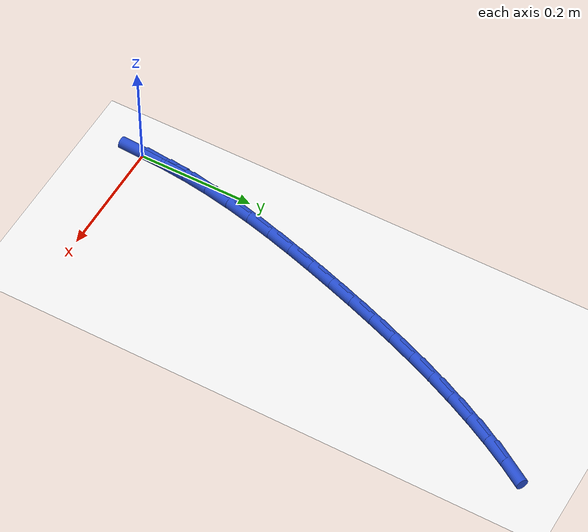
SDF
<sdf version="1.6">
 <world name="default">
  <model name="ground_plane">
   <static>1</static>
   <link name="link">
    <collision name="collision">
     <geometry><plane><normal>0 0 1</normal><size>100 100</size></plane></geometry>
     <surface><friction><ode><mu>100</mu><mu2>50</mu2></ode></friction></surface>
    </collision>
    <visual name="visual">
     <cast_shadows>0</cast_shadows>
     <geometry><plane><normal>0 0 1</normal><size>100 100</size></plane></geometry>
     <material>
      <script><uri>file://media/materials/scripts/gazebo.material</uri><name>Gazebo/WhiteGlow</name></script>
     </material>
    </visual>
   </link>
  </model>
  <model name="line">
   <link name="link_1">
    <pose>0.002319896613140393 0.045353780587828935 0.01 0 1.57 1.4712630571093563</pose>
    <collision name="collision">
     <geometry><cylinder><radius>0.01</radius><length>0.08</length></cylinder></geometry>
    </collision>
    <visual name="visual">
     <material>
      <script><name>Gazebo/Blue</name><uri>file://media/materials/scripts/gazebo.material</uri></script>
     </material>
     <geometry><cylinder><radius>0.01</radius><length>0.08</length></cylinder></geometry>
    </visual>
   </link>
   <link name="link_2">
    <pose>0.006813461398471169 0.09035095523040214 0.01 0 1.57 1.4272608606687416</pose>
    <collision name="collision">
     <geometry><cylinder><radius>0.01</radius><length>0.08</length></cylinder></geometry>
    </collision>
    <visual name="visual">
     <material>
      <script><name>Gazebo/Blue</name><uri>file://media/materials/scripts/gazebo.material</uri></script>
     </material>
     <geometry><cylinder><radius>0.01</radius><length>0.08</length></cylinder></geometry>
    </visual>
   </link>
   <link name="link_3">
    <pose>0.013274008550931672 0.13505153418928748 0.01 0 1.57 1.3879731852438943</pose>
    <collision name="collision">
     <geometry><cylinder><radius>0.01</radius><length>0.08</length></cylinder></geometry>
    </collision>
    <visual name="visual">
     <material>
      <script><name>Gazebo/Blue</name><uri>file://media/materials/scripts/gazebo.material</uri></script>
     </material>
     <geometry><cylinder><radius>0.01</radius><length>0.08</length></cylinder></geometry>
    </visual>
   </link>
   <link name="link_4">
    <pose>0.02149485226546126 0.17951552772605295 0.01 0 1.57 1.3535736724575327</pose>
    <collision name="collision">
     <geometry><cylinder><radius>0.01</radius><length>0.08</length></cylinder></geometry>
    </collision>
    <visual name="visual">
     <material>
      <script><name>Gazebo/Blue</name><uri>file://media/materials/scripts/gazebo.material</uri></script>
     </material>
     <geometry><cylinder><radius>0.01</radius><length>0.08</length></cylinder></geometry>
    </visual>
   </link>
   <link name="link_5">
    <pose>0.03126930673699929 0.2238029461022665 0.01 0 1.57 1.3241421796897823</pose>
    <collision name="collision">
     <geometry><cylinder><radius>0.01</radius><length>0.08</length></cylinder></geometry>
    </collision>
    <visual name="visual">
     <material>
      <script><name>Gazebo/Blue</name><uri>file://media/materials/scripts/gazebo.material</uri></script>
     </material>
     <geometry><cylinder><radius>0.01</radius><length>0.08</length></cylinder></geometry>
    </visual>
   </link>
   <link name="link_6">
    <pose>0.04239068616048512 0.2679737995794961 0.01 0 1.57 1.2996885627056074</pose>
    <collision name="collision">
     <geometry><cylinder><radius>0.01</radius><length>0.08</length></cylinder></geometry>
    </collision>
    <visual name="visual">
     <material>
      <script><name>Gazebo/Blue</name><uri>file://media/materials/scripts/gazebo.material</uri></script>
     </material>
     <geometry><cylinder><radius>0.01</radius><length>0.08</length></cylinder></geometry>
    </visual>
   </link>
   <link name="link_7">
    <pose>0.05465230473085809 0.31208809841930957 0.01 0 1.57 1.2801747549238063</pose>
    <collision name="collision">
     <geometry><cylinder><radius>0.01</radius><length>0.08</length></cylinder></geometry>
    </collision>
    <visual name="visual">
     <material>
      <script><name>Gazebo/Blue</name><uri>file://media/materials/scripts/gazebo.material</uri></script>
     </material>
     <geometry><cylinder><radius>0.01</radius><length>0.08</length></cylinder></geometry>
    </visual>
   </link>
   <link name="link_8">
    <pose>0.06784747664305754 0.3562058528832749 0.01 0 1.57 1.2654561424635526</pose>
    <collision name="collision">
     <geometry><cylinder><radius>0.01</radius><length>0.08</length></cylinder></geometry>
    </collision>
    <visual name="visual">
     <material>
      <script><name>Gazebo/Blue</name><uri>file://media/materials/scripts/gazebo.material</uri></script>
     </material>
     <geometry><cylinder><radius>0.01</radius><length>0.08</length></cylinder></geometry>
    </visual>
   </link>
   <link name="link_9">
    <pose>0.0817725992260276 0.40038493824453897 0.01 0 1.57 1.2524589045999632</pose>
    <collision name="collision">
     <geometry><cylinder><radius>0.01</radius><length>0.08</length></cylinder></geometry>
    </collision>
    <visual name="visual">
     <material>
      <script><name>Gazebo/Blue</name><uri>file://media/materials/scripts/gazebo.material</uri></script>
     </material>
     <geometry><cylinder><radius>0.01</radius><length>0.08</length></cylinder></geometry>
    </visual>
   </link>
   <link name="link_10">
    <pose>0.09634361159663021 0.4446004502627239 0.01 0 1.57 1.237232875810625</pose>
    <collision name="collision">
     <geometry><cylinder><radius>0.01</radius><length>0.08</length></cylinder></geometry>
    </collision>
    <visual name="visual">
     <material>
      <script><name>Gazebo/Blue</name><uri>file://media/materials/scripts/gazebo.material</uri></script>
     </material>
     <geometry><cylinder><radius>0.01</radius><length>0.08</length></cylinder></geometry>
    </visual>
   </link>
   <link name="link_11">
    <pose>0.1116315598684818 0.4887200772212944 0.01 0 1.57 1.219444315659839</pose>
    <collision name="collision">
     <geometry><cylinder><radius>0.01</radius><length>0.08</length></cylinder></geometry>
    </collision>
    <visual name="visual">
     <material>
      <script><name>Gazebo/Blue</name><uri>file://media/materials/scripts/gazebo.material</uri></script>
     </material>
     <geometry><cylinder><radius>0.01</radius><length>0.08</length></cylinder></geometry>
    </visual>
   </link>
   <link name="link_12">
    <pose>0.127717837928115 0.5326043418457709 0.01 0 1.57 1.1989935987830704</pose>
    <collision name="collision">
     <geometry><cylinder><radius>0.01</radius><length>0.08</length></cylinder></geometry>
    </collision>
    <visual name="visual">
     <material>
      <script><name>Gazebo/Blue</name><uri>file://media/materials/scripts/gazebo.material</uri></script>
     </material>
     <geometry><cylinder><radius>0.01</radius><length>0.08</length></cylinder></geometry>
    </visual>
   </link>
   <link name="link_13">
    <pose>0.14468383966206252 0.576113766861674 0.01 0 1.57 1.1757576896094266</pose>
    <collision name="collision">
     <geometry><cylinder><radius>0.01</radius><length>0.08</length></cylinder></geometry>
    </collision>
    <visual name="visual">
     <material>
      <script><name>Gazebo/Blue</name><uri>file://media/materials/scripts/gazebo.material</uri></script>
     </material>
     <geometry><cylinder><radius>0.01</radius><length>0.08</length></cylinder></geometry>
    </visual>
   </link>
   <link name="link_14">
    <pose>0.16261095895685698 0.6191088749945239 0.01 0 1.57 1.1495926434329429</pose>
    <collision name="collision">
     <geometry><cylinder><radius>0.01</radius><length>0.08</length></cylinder></geometry>
    </collision>
    <visual name="visual">
     <material>
      <script><name>Gazebo/Blue</name><uri>file://media/materials/scripts/gazebo.material</uri></script>
     </material>
     <geometry><cylinder><radius>0.01</radius><length>0.08</length></cylinder></geometry>
    </visual>
   </link>
   <link name="link_15">
    <pose>0.1815805896990312 0.6614501889698416 0.01 0 1.57 1.1203369771391016</pose>
    <collision name="collision">
     <geometry><cylinder><radius>0.01</radius><length>0.08</length></cylinder></geometry>
    </collision>
    <visual name="visual">
     <material>
      <script><name>Gazebo/Blue</name><uri>file://media/materials/scripts/gazebo.material</uri></script>
     </material>
     <geometry><cylinder><radius>0.01</radius><length>0.08</length></cylinder></geometry>
    </visual>
   </link>
   <link name="link_16">
    <pose>0.20167412577511776 0.7029982315131472 0.01 0 1.57 1.0878164156162171</pose>
    <collision name="collision">
     <geometry><cylinder><radius>0.01</radius><length>0.08</length></cylinder></geometry>
    </collision>
    <visual name="visual">
     <material>
      <script><name>Gazebo/Blue</name><uri>file://media/materials/scripts/gazebo.material</uri></script>
     </material>
     <geometry><cylinder><radius>0.01</radius><length>0.08</length></cylinder></geometry>
    </visual>
   </link>
   <link name="link_17">
    <pose>0.22297296107164946 0.7436135253499614 0.01 0 1.57 1.0518506044389189</pose>
    <collision name="collision">
     <geometry><cylinder><radius>0.01</radius><length>0.08</length></cylinder></geometry>
    </collision>
    <visual name="visual">
     <material>
      <script><name>Gazebo/Blue</name><uri>file://media/materials/scripts/gazebo.material</uri></script>
     </material>
     <geometry><cylinder><radius>0.01</radius><length>0.08</length></cylinder></geometry>
    </visual>
   </link>
   <link name="link_18">
    <pose>0.24555848947515885 0.7831565932058046 0.01 0 1.57 1.0122624396479463</pose>
    <collision name="collision">
     <geometry><cylinder><radius>0.01</radius><length>0.08</length></cylinder></geometry>
    </collision>
    <visual name="visual">
     <material>
      <script><name>Gazebo/Blue</name><uri>file://media/materials/scripts/gazebo.material</uri></script>
     </material>
     <geometry><cylinder><radius>0.01</radius><length>0.08</length></cylinder></geometry>
    </visual>
   </link>
   <link name="link_160">
    <pose>-1.5612511283791264e-17 8.326672684688674e-17 0.01 0 1.57 1.5188116365965607</pose>
    <collision name="collision">
     <geometry><cylinder><radius>0.01</radius><length>0.08</length></cylinder></geometry>
    </collision>
    <visual name="visual">
     <material>
      <script><name>Gazebo/Blue</name><uri>file://media/materials/scripts/gazebo.material</uri></script>
     </material>
     <geometry><cylinder><radius>0.01</radius><length>0.08</length></cylinder></geometry>
    </visual>
   </link>
   <link name="link_161">
    <pose>0.0023573076212435214 0.045305334331913846 0.01 0 1.57 1.5188116365965612</pose>
    <collision name="collision">
     <geometry><cylinder><radius>0.01</radius><length>0.08</length></cylinder></geometry>
    </collision>
    <visual name="visual">
     <material>
      <script><name>Gazebo/Blue</name><uri>file://media/materials/scripts/gazebo.material</uri></script>
     </material>
     <geometry><cylinder><radius>0.01</radius><length>0.08</length></cylinder></geometry>
    </visual>
   </link>
  </model>
 </world>
</sdf>
